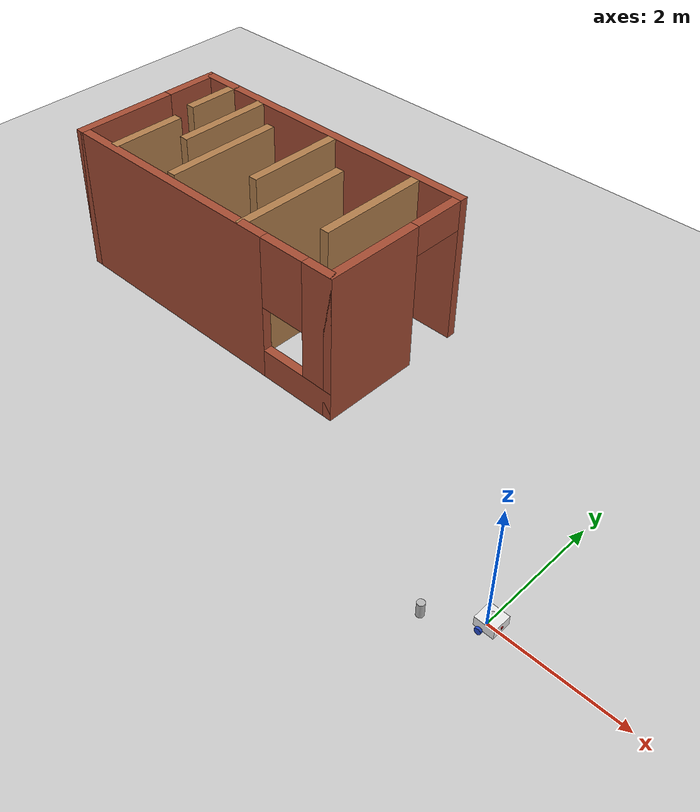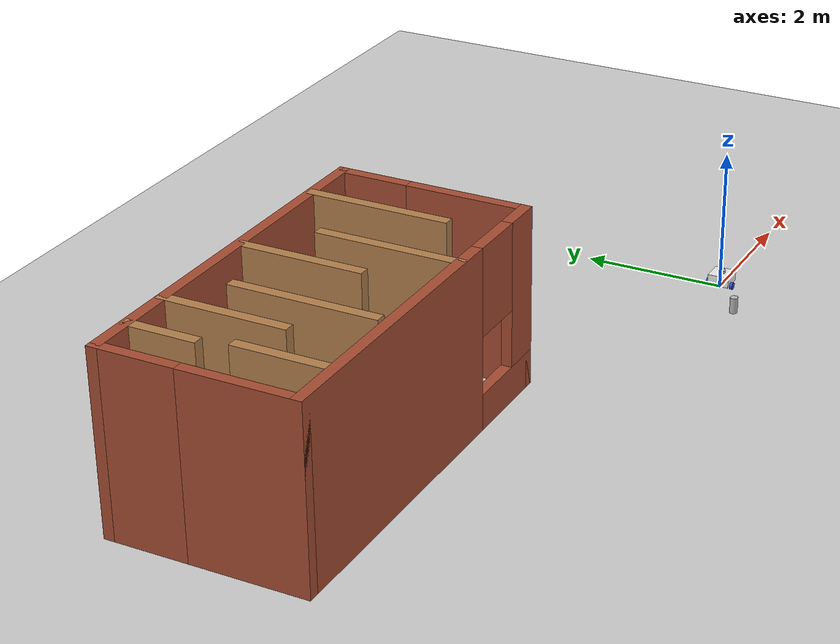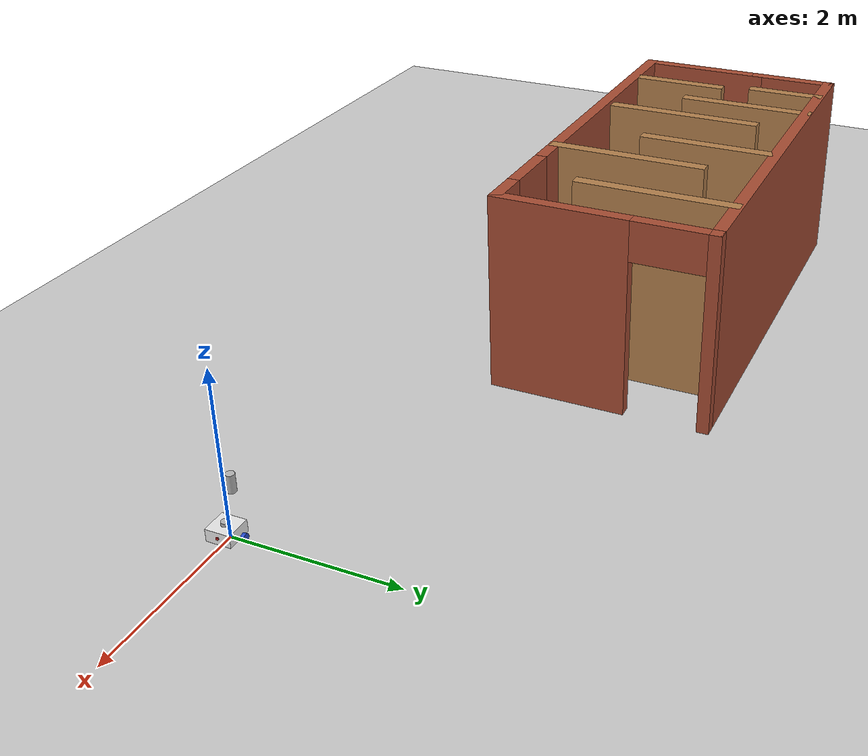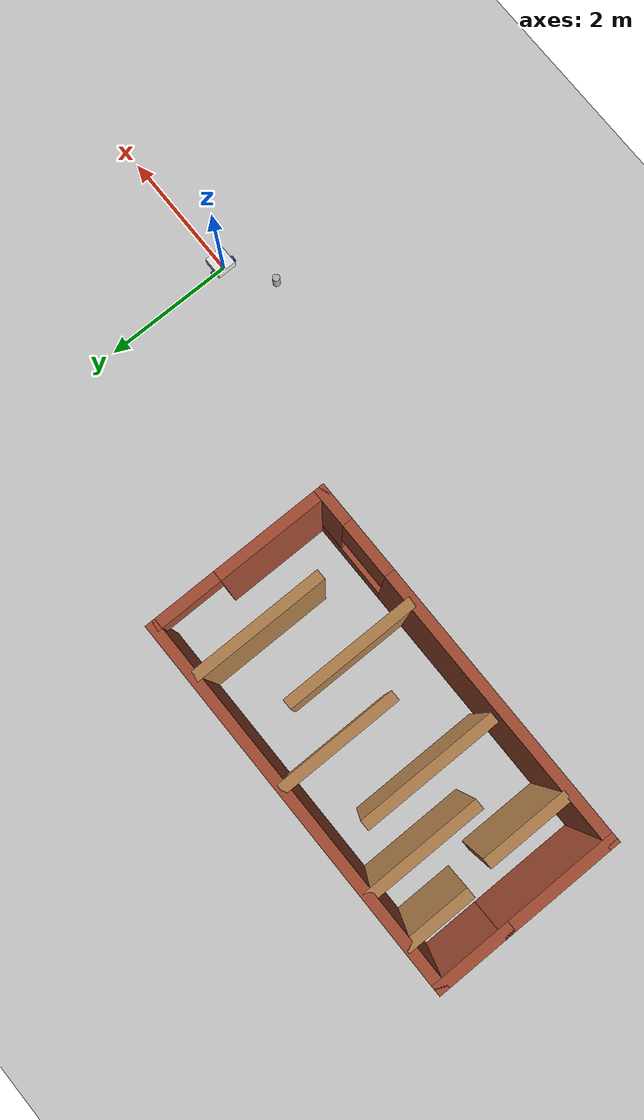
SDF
<sdf version="1.7">
 <world name="default">
  <light name="sun" type="directional">
   <pose>0 0 10 0 -0 0</pose>
   <diffuse>0.8 0.8 0.8 1</diffuse>
   <specular>0.2 0.2 0.2 1</specular>
   <attenuation>
    <range>1000</range>
    <constant>0.9</constant>
    <linear>0.01</linear>
    <quadratic>0.001</quadratic>
   </attenuation>
   <direction>-0.5 0.1 -0.9</direction>
   <spot><inner_angle>0</inner_angle><outer_angle>0</outer_angle><falloff>0</falloff></spot>
  </light>
  <model name="ground_plane">
   <static>1</static>
   <link name="link">
    <collision name="collision">
     <geometry><plane><normal>0 0 1</normal><size>100 100</size></plane></geometry>
     <surface>
      <contact><collide_bitmask>65535</collide_bitmask></contact>
      <friction><ode><mu>100</mu><mu2>50</mu2></ode></friction>
     </surface>
    </collision>
    <visual name="visual">
     <cast_shadows>0</cast_shadows>
     <geometry><plane><normal>0 0 1</normal><size>100 100</size></plane></geometry>
     <material>
      <script><uri>file://media/materials/scripts/gazebo.material</uri><name>Gazebo/Grey</name></script>
     </material>
    </visual>
   </link>
  </model>
  <gravity>0 0 -9.8</gravity>
  <magnetic_field>6e-06 2.3e-05 -4.2e-05</magnetic_field>
  <atmosphere type="adiabatic"/>
  <physics type="ode">
   <max_step_size>0.001</max_step_size>
   <real_time_factor>1</real_time_factor>
   <real_time_update_rate>1000</real_time_update_rate>
  </physics>
  <scene><ambient>0.4 0.4 0.4 1</ambient><background>0.7 0.7 0.7 1</background><shadows>1</shadows></scene>
  <spherical_coordinates>
   <surface_model>EARTH_WGS84</surface_model>
   <latitude_deg>0</latitude_deg>
   <longitude_deg>0</longitude_deg>
   <elevation>0</elevation>
   <heading_deg>0</heading_deg>
  </spherical_coordinates>
  <model name="my_bot">
   <link name="base_link">
    <inertial>
     <pose>0.062857 0 0.077857 0 -0 0</pose>
     <mass>0.7</mass>
     <inertia>
      <ixx>0.00632262</ixx>
      <ixy>0</ixy>
      <ixz>0.000700714</ixz>
      <iyy>0.0070169</iyy>
      <iyz>0</iyz>
      <izz>0.00841929</izz>
     </inertia>
    </inertial>
    <collision name="base_link_fixed_joint_lump__chassis_collision">
     <pose>0.05 0 0.075 0 -0 0</pose>
     <geometry><box><size>0.3 0.3 0.15</size></box></geometry>
    </collision>
    <collision name="base_link_fixed_joint_lump__caster_wheel_collision_1">
     <pose>0.14 0 0 0 -0 0</pose>
     <geometry><sphere><radius>0.05</radius></sphere></geometry>
     <surface><friction><ode><mu>0.001</mu><mu2>0.001</mu2></ode></friction></surface>
    </collision>
    <collision name="base_link_fixed_joint_lump__laser_frame_collision_2">
     <pose>0.05 0 0.17 0 -0 0</pose>
     <geometry><cylinder><length>0.04</length><radius>0.05</radius></cylinder></geometry>
    </collision>
    <visual name="base_link_fixed_joint_lump__chassis_visual">
     <pose>0.05 0 0.075 0 -0 0</pose>
     <geometry><box><size>0.3 0.3 0.15</size></box></geometry>
     <material>
      <script><name>Gazebo/White</name><uri>file://media/materials/scripts/gazebo.material</uri></script>
     </material>
    </visual>
    <visual name="base_link_fixed_joint_lump__camera_link_visual_1">
     <pose>0.205 0 0.08 0 -0 0</pose>
     <geometry><box><size>0.01 0.03 0.03</size></box></geometry>
     <material>
      <script><name>Gazebo/Red</name><uri>file://media/materials/scripts/gazebo.material</uri></script>
     </material>
    </visual>
    <visual name="base_link_fixed_joint_lump__caster_wheel_visual_2">
     <pose>0.14 0 0 0 -0 0</pose>
     <geometry><sphere><radius>0.05</radius></sphere></geometry>
     <material>
      <script><name>Gazebo/Green</name><uri>file://media/materials/scripts/gazebo.material</uri></script>
     </material>
    </visual>
    <visual name="base_link_fixed_joint_lump__laser_frame_visual_3">
     <pose>0.05 0 0.17 0 -0 0</pose>
     <geometry><cylinder><length>0.04</length><radius>0.05</radius></cylinder></geometry>
    </visual>
    <sensor name="camera" type="camera">
     <visualize>1</visualize>
     <update_rate>10</update_rate>
     <camera>
      <horizontal_fov>1.089</horizontal_fov>
      <image><format>R8G8B8</format><width>640</width><height>480</height></image>
      <clip><near>0.05</near><far>8</far></clip>
     </camera>
     <plugin name="camera_controller" filename="libgazebo_ros_camera.so">
      <alwaysOn>1</alwaysOn>
      <updateRate>30</updateRate>
      <cameraName>my_camera</cameraName>
      <frameName>camera_link_optical</frameName>
      <topicName>image_raw</topicName>
      <robotNamespace>/</robotNamespace>
     </plugin>
     <pose>0.205 0 0.08 0 -0 0</pose>
    </sensor>
    <sensor name="laser" type="ray">
     <visualize>0</visualize>
     <update_rate>10</update_rate>
     <ray>
      <scan>
       <horizontal>
        <samples>310</samples>
        <resolution>1</resolution>
        <min_angle>-3.14</min_angle>
        <max_angle>3.14</max_angle>
       </horizontal>
       <vertical><samples>1</samples><min_angle>0</min_angle><max_angle>0</max_angle></vertical>
      </scan>
      <range><min>0.2</min><max>30</max></range>
      <noise><type>gaussian</type><mean>0</mean><stddev>0.01</stddev></noise>
     </ray>
     <plugin name="gazebo_ros_laser" filename="libgazebo_ros_laser.so">
      <topicName>/scan</topicName>
      <frameName>lidar_link</frameName>
      <robotNamespace>/</robotNamespace>
     </plugin>
     <pose>0.05 0 0.17 0 -0 0</pose>
    </sensor>
   </link>
   <joint name="left_wheel_joint" type="revolute">
    <pose relative_to="base_link">0 0.175 0 -1.5708 0 0</pose>
    <parent>base_link</parent>
    <child>left_wheel</child>
    <axis>
     <xyz>0 0 1</xyz>
     <limit><lower>-1e+16</lower><upper>1e+16</upper></limit>
     <dynamics><spring_reference>0</spring_reference><spring_stiffness>0</spring_stiffness></dynamics>
    </axis>
   </joint>
   <link name="left_wheel">
    <pose relative_to="left_wheel_joint">0 0 0 0 -0 0</pose>
    <inertial>
     <mass>0.1</mass>
     <inertia>
      <ixx>7.58333e-05</ixx>
      <ixy>0</ixy>
      <ixz>0</ixz>
      <iyy>7.58333e-05</iyy>
      <iyz>0</iyz>
      <izz>0.000125</izz>
     </inertia>
    </inertial>
    <collision name="left_wheel_collision">
     <geometry><cylinder><length>0.04</length><radius>0.05</radius></cylinder></geometry>
    </collision>
    <visual name="left_wheel_visual">
     <geometry><cylinder><length>0.04</length><radius>0.05</radius></cylinder></geometry>
     <material>
      <script><name>Gazebo/Blue</name><uri>file://media/materials/scripts/gazebo.material</uri></script>
     </material>
    </visual>
   </link>
   <joint name="right_wheel_joint" type="revolute">
    <pose relative_to="base_link">0 -0.175 0 1.5708 -0 0</pose>
    <parent>base_link</parent>
    <child>right_wheel</child>
    <axis>
     <xyz>0 0 -1</xyz>
     <limit><lower>-1e+16</lower><upper>1e+16</upper></limit>
     <dynamics><spring_reference>0</spring_reference><spring_stiffness>0</spring_stiffness></dynamics>
    </axis>
   </joint>
   <link name="right_wheel">
    <pose relative_to="right_wheel_joint">0 0 0 0 -0 0</pose>
    <inertial>
     <mass>0.1</mass>
     <inertia>
      <ixx>7.58333e-05</ixx>
      <ixy>0</ixy>
      <ixz>0</ixz>
      <iyy>7.58333e-05</iyy>
      <iyz>0</iyz>
      <izz>0.000125</izz>
     </inertia>
    </inertial>
    <collision name="right_wheel_collision">
     <geometry><cylinder><length>0.04</length><radius>0.05</radius></cylinder></geometry>
    </collision>
    <visual name="right_wheel_visual">
     <geometry><cylinder><length>0.04</length><radius>0.05</radius></cylinder></geometry>
     <material>
      <script><name>Gazebo/Blue</name><uri>file://media/materials/scripts/gazebo.material</uri></script>
     </material>
    </visual>
   </link>
   <plugin name="differential_drive_controller" filename="libgazebo_ros_diff_drive.so">
    <updateRate>50</updateRate>
    <leftJoint>left_wheel_joint</leftJoint>
    <rightJoint>right_wheel_joint</rightJoint>
    <wheelSeparation>0.34</wheelSeparation>
    <wheelDiameter>0.15</wheelDiameter>
    <wheelAcceleration>5</wheelAcceleration>
    <wheelTorque>100</wheelTorque>
    <commandTopic>cmd_vel</commandTopic>
    <odometryTopic>odom</odometryTopic>
    <odometryFrame>odom</odometryFrame>
    <robotBaseFrame>base_footprint</robotBaseFrame>
    <odometrySource>world</odometrySource>
    <publishWheelTF>1</publishWheelTF>
    <publishOdomTF>1</publishOdomTF>
    <publishWheelJointState>1</publishWheelJointState>
    <legacyMode>0</legacyMode>
    <rosDebugLevel>na</rosDebugLevel>
    <publishTf>1</publishTf>
    <robotNamespace>/</robotNamespace>
   </plugin>
   <frame name="camera_optical_joint" attached_to="camera_link"><pose>0 0 0 -1.5708 -0 -1.5708</pose></frame>
   <frame name="camera_link_optical" attached_to="camera_optical_joint"/>
   <frame name="camera_joint" attached_to="chassis"><pose>0.305 0 0.08 0 -0 0</pose></frame>
   <frame name="camera_link" attached_to="camera_joint"/>
   <frame name="caster_wheel_joint" attached_to="chassis"><pose>0.24 0 0 0 -0 0</pose></frame>
   <frame name="caster_wheel" attached_to="caster_wheel_joint"/>
   <frame name="laser_joint" attached_to="chassis"><pose>0.15 0 0.17 0 -0 0</pose></frame>
   <frame name="laser_frame" attached_to="laser_joint"/>
   <frame name="chassis_joint" attached_to="base_link"><pose>-0.1 0 0 0 -0 0</pose></frame>
   <frame name="chassis" attached_to="chassis_joint"/>
   <pose>0.00265 1.3e-05 0.05 0 1e-06 7.9e-05</pose>
  </model>
  <model name="beer">
   <link name="link">
    <pose>0 0 0.115 0 -0 1.57</pose>
    <inertial>
     <mass>0.19</mass>
     <inertia><ixx>0.00058</ixx><ixy>0</ixy><ixz>0</ixz><iyy>0.00058</iyy><iyz>0</iyz><izz>0.00019</izz></inertia>
    </inertial>
    <collision name="collision">
     <geometry><cylinder><radius>0.055</radius><length>0.23</length></cylinder></geometry>
    </collision>
    <visual name="visual">
     <geometry><cylinder><radius>0.055</radius><length>0.23</length></cylinder></geometry>
     <material>
      <script>
       <uri>model://beer/materials/scripts</uri>
       <uri>model://beer/materials/textures</uri>
       <name>Beer/Diffuse</name>
      </script>
     </material>
    </visual>
   </link>
   <plugin name="usv_dynamics_wamv_dynamics_plugin" filename="libgazebo_usv_dynamics_plugin.so">
    <bodyName>link</bodyName>
    <waterLevel>0</waterLevel>
    <waterDensity>997.8</waterDensity>
    <xDotU>0.0</xDotU>
    <yDotV>0.0</yDotV>
    <nDotR>0.0</nDotR>
    <xU>1.0</xU>
    <yV>1.0</yV>
    <zW>1.0</zW>
    <hullRadius>0.0381</hullRadius>
    <boatWidth>0.1</boatWidth>
    <boatLength>0.23</boatLength>
    <length_n>1.5</length_n>
    <wave_model>ocean_waves</wave_model>
   </plugin>
   <pose>-0.654076 -0.452259 -0 0 -0 0</pose>
  </model>
  <model name="obstacleworld">
   <pose>-6.4669 2.97366 0 0 -0 0</pose>
   <link name="Wall_0">
    <collision name="Wall_0_Collision">
     <geometry><box><size>1.75 0.15 2.5</size></box></geometry>
     <pose>0 0 1.25 0 -0 0</pose>
    </collision>
    <visual name="Wall_0_Visual">
     <pose>0 0 1.25 0 -0 0</pose>
     <geometry><box><size>1.75 0.15 2.5</size></box></geometry>
     <material>
      <script><uri>file://media/materials/scripts/gazebo.material</uri><name>Gazebo/Bricks</name></script>
      <ambient>1 1 1 1</ambient>
     </material>
     <meta><layer>0</layer></meta>
    </visual>
    <pose>-2.675 -0.9375 0 0 -0 -1.5708</pose>
   </link>
   <link name="Wall_1">
    <pose>0 -1.7375 0 0 -0 0</pose>
    <visual name="Wall_1_Visual_0">
     <pose>-0.6775 0 1.25 0 -0 0</pose>
     <geometry><box><size>4.145 0.15 2.5</size></box></geometry>
     <material>
      <script><uri>file://media/materials/scripts/gazebo.material</uri><name>Gazebo/Bricks</name></script>
      <ambient>1 1 1 1</ambient>
     </material>
     <meta><layer>0</layer></meta>
    </visual>
    <collision name="Wall_1_Collision_0">
     <geometry><box><size>4.145 0.15 2.5</size></box></geometry>
     <pose>-0.6775 0 1.25 0 -0 0</pose>
    </collision>
    <visual name="Wall_1_Visual_1">
     <pose>2.0725 0 0.25 0 -0 0</pose>
     <geometry><box><size>1.355 0.15 0.5</size></box></geometry>
     <material>
      <script><uri>file://media/materials/scripts/gazebo.material</uri><name>Gazebo/Bricks</name></script>
      <ambient>1 1 1 1</ambient>
     </material>
     <meta><layer>0</layer></meta>
    </visual>
    <collision name="Wall_1_Collision_1">
     <geometry><box><size>1.355 0.15 0.5</size></box></geometry>
     <pose>2.0725 0 0.25 0 -0 0</pose>
    </collision>
    <visual name="Wall_1_Visual_2">
     <pose>2.4725 0 1.5 0 -0 0</pose>
     <geometry><box><size>0.555 0.15 2</size></box></geometry>
     <material>
      <script><uri>file://media/materials/scripts/gazebo.material</uri><name>Gazebo/Bricks</name></script>
      <ambient>1 1 1 1</ambient>
     </material>
     <meta><layer>0</layer></meta>
    </visual>
    <collision name="Wall_1_Collision_2">
     <geometry><box><size>0.555 0.15 2</size></box></geometry>
     <pose>2.4725 0 1.5 0 -0 0</pose>
    </collision>
    <visual name="Wall_1_Visual_3">
     <pose>1.795 0 1.9 0 -0 0</pose>
     <geometry><box><size>0.8 0.15 1.2</size></box></geometry>
     <material>
      <script><uri>file://media/materials/scripts/gazebo.material</uri><name>Gazebo/Bricks</name></script>
      <ambient>1 1 1 1</ambient>
     </material>
     <meta><layer>0</layer></meta>
    </visual>
    <collision name="Wall_1_Collision_3">
     <geometry><box><size>0.8 0.15 1.2</size></box></geometry>
     <pose>1.795 0 1.9 0 -0 0</pose>
    </collision>
   </link>
   <link name="Wall_10">
    <collision name="Wall_10_Collision">
     <geometry><box><size>1.75 0.15 2.5</size></box></geometry>
     <pose>0 0 1.25 0 -0 0</pose>
    </collision>
    <visual name="Wall_10_Visual">
     <pose>0 0 1.25 0 -0 0</pose>
     <geometry><box><size>1.75 0.15 2.5</size></box></geometry>
     <material>
      <script><uri>file://media/materials/scripts/gazebo.material</uri><name>Gazebo/Wood</name></script>
      <ambient>1 1 1 1</ambient>
     </material>
     <meta><layer>0</layer></meta>
    </visual>
    <pose>-1.375 0.0525 0 0 -0 -1.5708</pose>
   </link>
   <link name="Wall_12">
    <collision name="Wall_12_Collision">
     <geometry><box><size>2 0.15 2.5</size></box></geometry>
     <pose>0 0 1.25 0 -0 0</pose>
    </collision>
    <visual name="Wall_12_Visual">
     <pose>0 0 1.25 0 -0 0</pose>
     <geometry><box><size>2 0.15 2.5</size></box></geometry>
     <material>
      <script><uri>file://media/materials/scripts/gazebo.material</uri><name>Gazebo/Wood</name></script>
      <ambient>1 1 1 1</ambient>
     </material>
     <meta><layer>0</layer></meta>
    </visual>
    <pose>-0.715 -0.6125 0 0 -0 -1.5708</pose>
   </link>
   <link name="Wall_14">
    <collision name="Wall_14_Collision">
     <geometry><box><size>1.75 0.15 2.5</size></box></geometry>
     <pose>0 0 1.25 0 -0 0</pose>
    </collision>
    <visual name="Wall_14_Visual">
     <pose>0 0 1.25 0 -0 0</pose>
     <geometry><box><size>1.75 0.15 2.5</size></box></geometry>
     <material>
      <script><uri>file://media/materials/scripts/gazebo.material</uri><name>Gazebo/Wood</name></script>
      <ambient>1 1 1 1</ambient>
     </material>
     <meta><layer>0</layer></meta>
    </visual>
    <pose>0.225 0.0125 0 0 -0 -1.5708</pose>
   </link>
   <link name="Wall_16">
    <collision name="Wall_16_Collision">
     <geometry><box><size>2 0.15 2.5</size></box></geometry>
     <pose>0 0 1.25 0 -0 0</pose>
    </collision>
    <visual name="Wall_16_Visual">
     <pose>0 0 1.25 0 -0 0</pose>
     <geometry><box><size>2 0.15 2.5</size></box></geometry>
     <material>
      <script><uri>file://media/materials/scripts/gazebo.material</uri><name>Gazebo/Wood</name></script>
      <ambient>1 1 1 1</ambient>
     </material>
     <meta><layer>0</layer></meta>
    </visual>
    <pose>0.955 -0.7925 0 0 -0 -1.5708</pose>
   </link>
   <link name="Wall_18">
    <collision name="Wall_18_Collision">
     <geometry><box><size>2 0.15 2.5</size></box></geometry>
     <pose>0 0 1.25 0 -0 0</pose>
    </collision>
    <visual name="Wall_18_Visual">
     <pose>0 0 1.25 0 -0 0</pose>
     <geometry><box><size>2 0.15 2.5</size></box></geometry>
     <material>
      <script><uri>file://media/materials/scripts/gazebo.material</uri><name>Gazebo/Wood</name></script>
      <ambient>1 1 1 1</ambient>
     </material>
     <meta><layer>0</layer></meta>
    </visual>
    <pose>1.905 -0.0925 0 0 -0 -1.5708</pose>
   </link>
   <link name="Wall_2">
    <pose>2.675 -0.4375 0 0 -0 1.5708</pose>
    <visual name="Wall_2_Visual_0">
     <pose>-0.5225 0 1.25 0 -0 0</pose>
     <geometry><box><size>1.705 0.15 2.5</size></box></geometry>
     <material>
      <script><uri>file://media/materials/scripts/gazebo.material</uri><name>Gazebo/Bricks</name></script>
      <ambient>1 1 1 1</ambient>
     </material>
     <meta><layer>0</layer></meta>
    </visual>
    <collision name="Wall_2_Collision_0">
     <geometry><box><size>1.705 0.15 2.5</size></box></geometry>
     <pose>-0.5225 0 1.25 0 -0 0</pose>
    </collision>
    <visual name="Wall_2_Visual_1">
     <pose>1.3025 0 1.25 0 -0 0</pose>
     <geometry><box><size>0.145 0.15 2.5</size></box></geometry>
     <material>
      <script><uri>file://media/materials/scripts/gazebo.material</uri><name>Gazebo/Bricks</name></script>
      <ambient>1 1 1 1</ambient>
     </material>
     <meta><layer>0</layer></meta>
    </visual>
    <collision name="Wall_2_Collision_1">
     <geometry><box><size>0.145 0.15 2.5</size></box></geometry>
     <pose>1.3025 0 1.25 0 -0 0</pose>
    </collision>
    <visual name="Wall_2_Visual_2">
     <pose>0.78 0 2.25 0 -0 0</pose>
     <geometry><box><size>0.9 0.15 0.5</size></box></geometry>
     <material>
      <script><uri>file://media/materials/scripts/gazebo.material</uri><name>Gazebo/Bricks</name></script>
      <ambient>1 1 1 1</ambient>
     </material>
     <meta><layer>0</layer></meta>
    </visual>
    <collision name="Wall_2_Collision_2">
     <geometry><box><size>0.9 0.15 0.5</size></box></geometry>
     <pose>0.78 0 2.25 0 -0 0</pose>
    </collision>
   </link>
   <link name="Wall_3">
    <collision name="Wall_3_Collision">
     <geometry><box><size>5.5 0.15 2.5</size></box></geometry>
     <pose>0 0 1.25 0 -0 0</pose>
    </collision>
    <visual name="Wall_3_Visual">
     <pose>0 0 1.25 0 -0 0</pose>
     <geometry><box><size>5.5 0.15 2.5</size></box></geometry>
     <material>
      <script><uri>file://media/materials/scripts/gazebo.material</uri><name>Gazebo/Bricks</name></script>
      <ambient>1 1 1 1</ambient>
     </material>
     <meta><layer>0</layer></meta>
    </visual>
    <pose>0 0.8625 0 0 -0 3.14159</pose>
   </link>
   <link name="Wall_4">
    <collision name="Wall_4_Collision">
     <geometry><box><size>1.15 0.15 2.5</size></box></geometry>
     <pose>0 0 1.25 0 -0 0</pose>
    </collision>
    <visual name="Wall_4_Visual">
     <pose>0 0 1.25 0 -0 0</pose>
     <geometry><box><size>1.15 0.15 2.5</size></box></geometry>
     <material>
      <script><uri>file://media/materials/scripts/gazebo.material</uri><name>Gazebo/Bricks</name></script>
      <ambient>1 1 1 1</ambient>
     </material>
     <meta><layer>0</layer></meta>
    </visual>
    <pose>-2.675 0.3625 0 0 -0 -1.5708</pose>
   </link>
   <link name="Wall_6">
    <collision name="Wall_6_Collision">
     <geometry><box><size>1 0.15 2.5</size></box></geometry>
     <pose>0 0 1.25 0 -0 0</pose>
    </collision>
    <visual name="Wall_6_Visual">
     <pose>0 0 1.25 0 -0 0</pose>
     <geometry><box><size>1 0.15 2.5</size></box></geometry>
     <material>
      <script><uri>file://media/materials/scripts/gazebo.material</uri><name>Gazebo/Wood</name></script>
      <ambient>1 1 1 1</ambient>
     </material>
     <meta><layer>0</layer></meta>
    </visual>
    <pose>-2.085 0.4075 0 0 -0 -1.5708</pose>
   </link>
   <link name="Wall_8">
    <collision name="Wall_8_Collision">
     <geometry><box><size>1.25 0.15 2.5</size></box></geometry>
     <pose>0 0 1.25 0 -0 0</pose>
    </collision>
    <visual name="Wall_8_Visual">
     <pose>0 0 1.25 0 -0 0</pose>
     <geometry><box><size>1.25 0.15 2.5</size></box></geometry>
     <material>
      <script><uri>file://media/materials/scripts/gazebo.material</uri><name>Gazebo/Wood</name></script>
      <ambient>1 1 1 1</ambient>
     </material>
     <meta><layer>0</layer></meta>
    </visual>
    <pose>-1.955 -1.0675 0 0 -0 -1.5708</pose>
   </link>
   <static>1</static>
  </model>
 </world>
</sdf>
